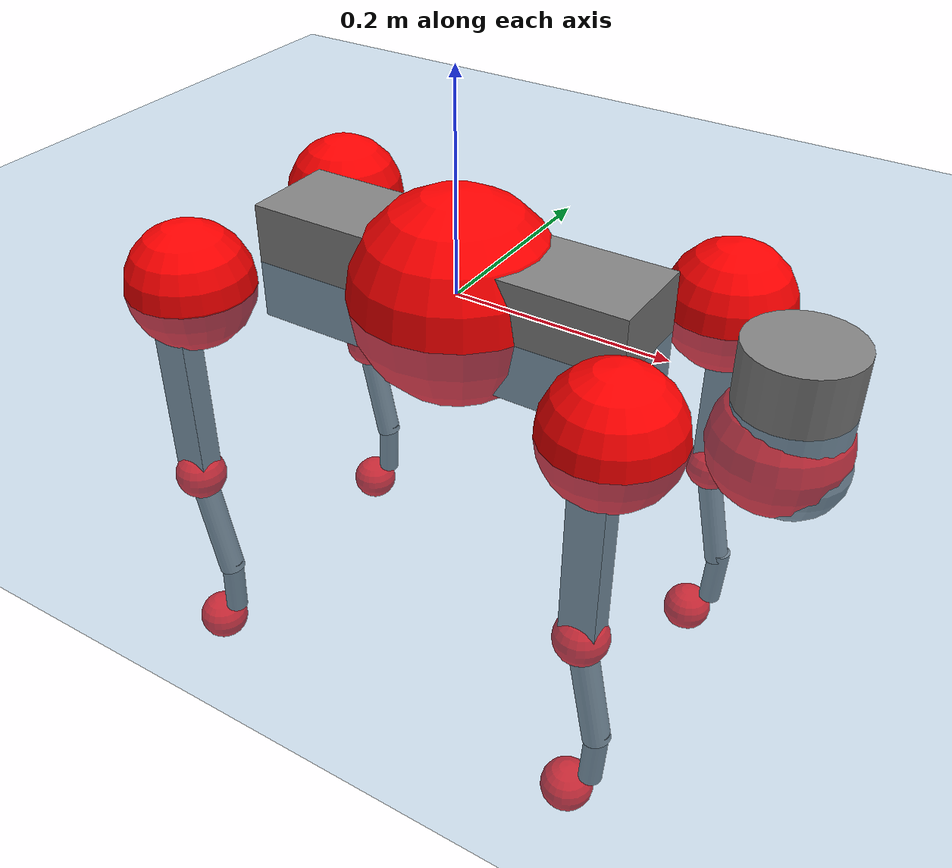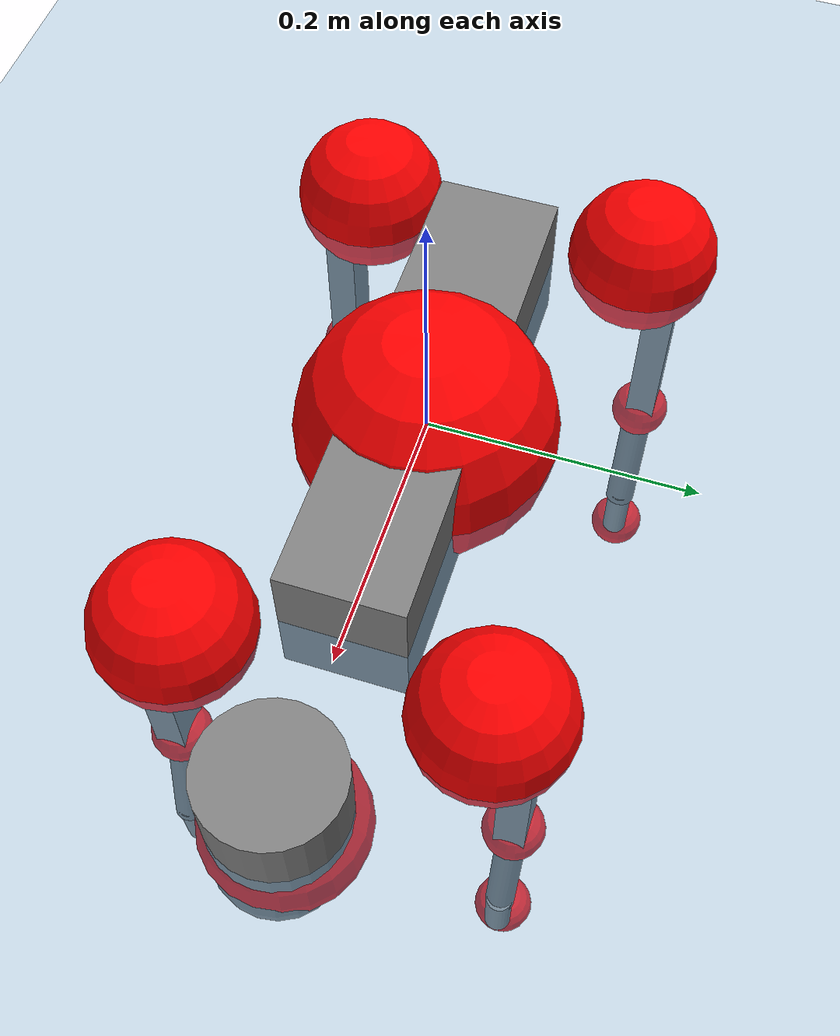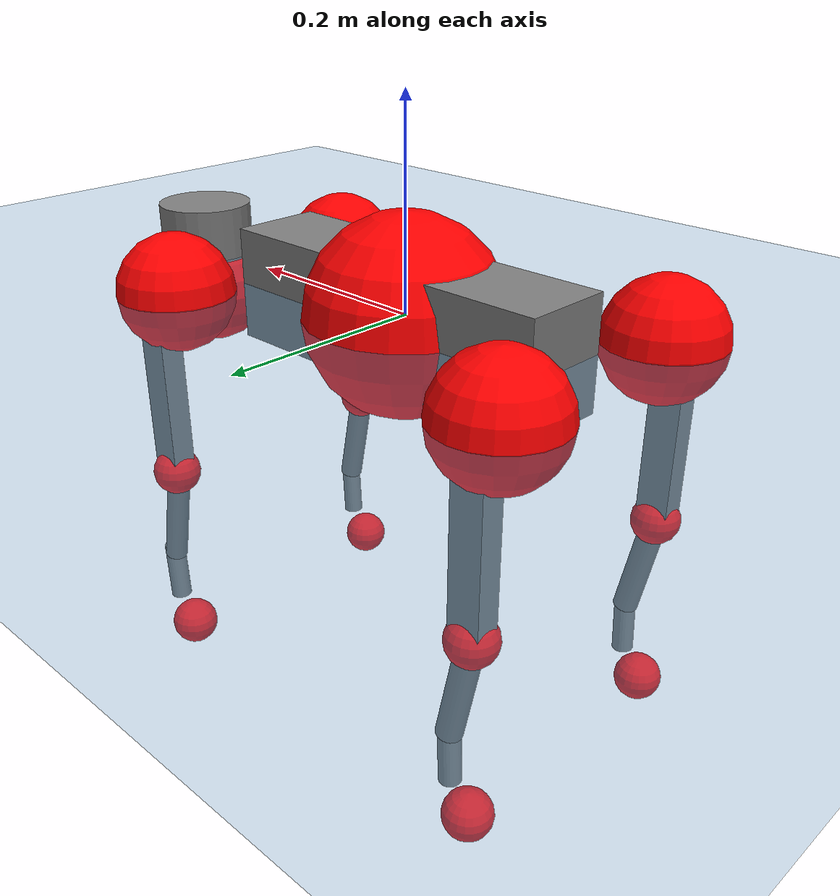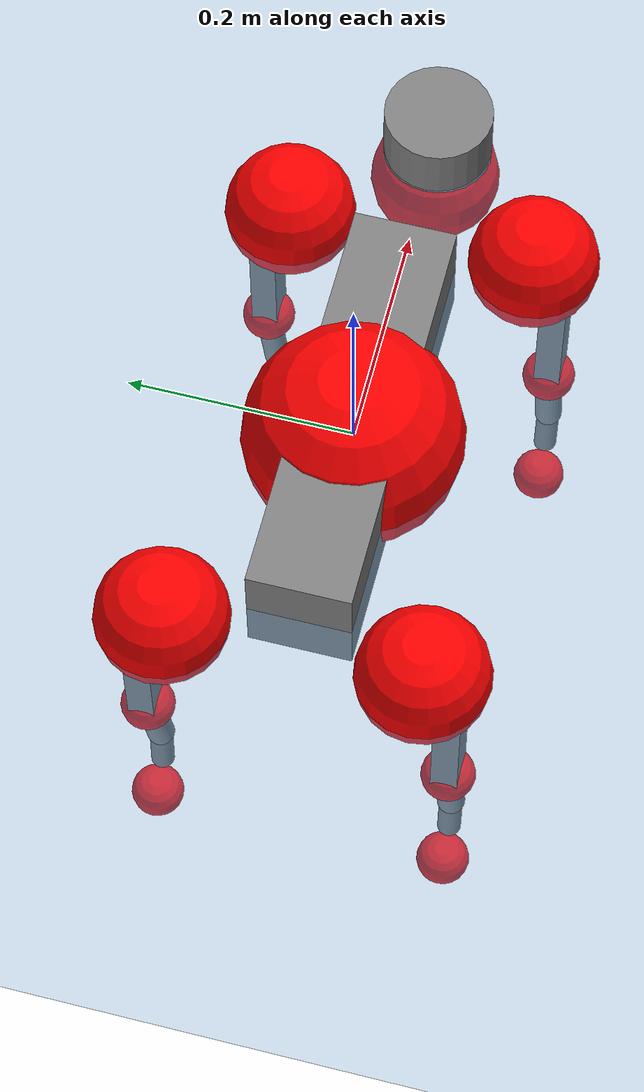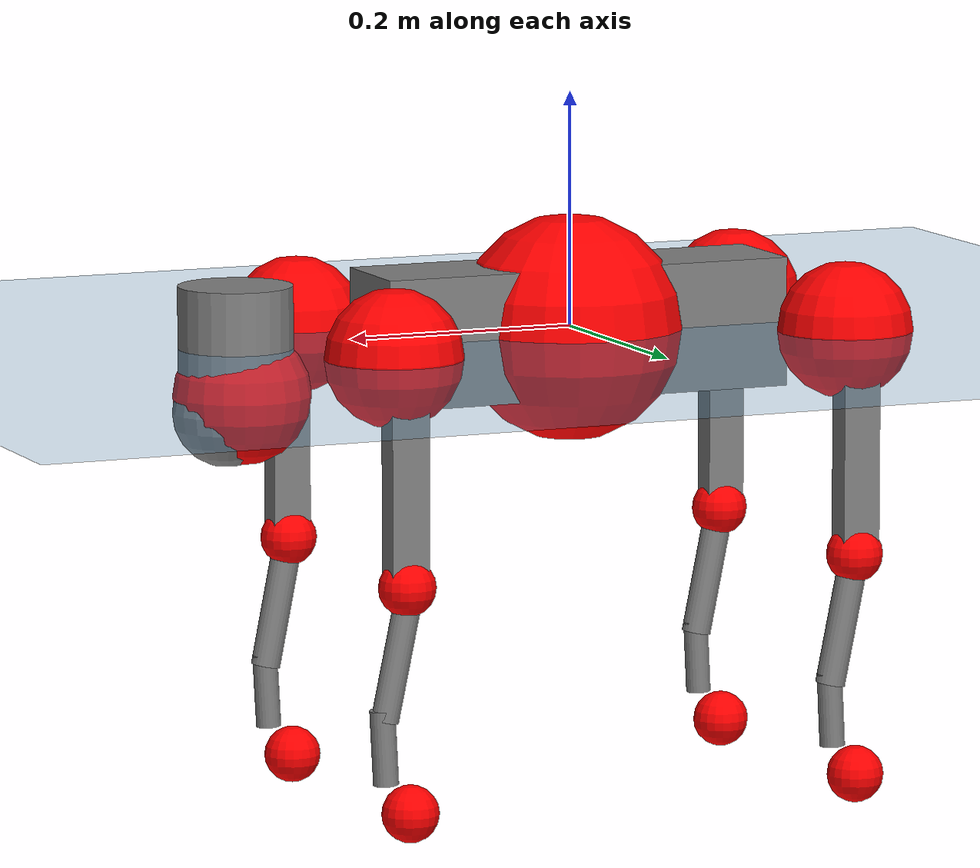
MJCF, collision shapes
<mujoco model="go2">
  <compiler angle="radian" assetdir="assets" balanceinertia="true" inertiafromgeom="false"/>

  <option timestep="0.005" density="1.2" viscosity="2e-05"/>

  <size nkey="1"/>

  <visual>
    <quality shadowsize="8192"/>
    <map shadowclip="0.5"/>
  </visual>

  <default>
    <default class="/">
      <geom contype="0" conaffinity="0" group="1" solref="-1000 -80"/>
      <site size="0.01 0.005 0.005" group="5"/>
      <general forcelimited="true" biastype="affine" gainprm="20" biasprm="0 -20 -0.5"/>
      <default class="go2">
        <joint armature="0.01" damping="0.01" frictionloss="0.2"/>
        <geom condim="1" margin="0.001"/>
        <default class="visual">
          <geom type="mesh" group="2"/>
        </default>
        <default class="collision">
          <geom group="3"/>
          <default class="foot">
            <geom size="0.022 0 0" condim="6" priority="1" friction="0.8 0.02 0.01" solimp="0.015 1 0.022"/>
          </default>
        </default>
        <default class="reward_collision_sphere">
          <geom group="5" rgba="1 0 0 1"/>
        </default>
      </default>
    </default>
  </default>

  <asset>
    <texture type="skybox" colorspace="auto" name="//unnamed_texture_0" builtin="gradient" rgb1="0.95 0.95 0.95" rgb2="0.95 0.95 0.95" width="100" height="600"/>
    <texture type="2d" colorspace="auto" name="texplane" builtin="checker" rgb1="0.345 0.575 0.748" rgb2="0.345 0.575 0.748" markrgb="1 1 1" width="512" height="512"/>
    <material name="MatPlane" class="/" texture="texplane" texuniform="true" texrepeat="2 2" specular="0.9"/>
    <material name="metal" class="/" rgba="0.9 0.95 0.95 1"/>
    <material name="black" class="/" rgba="0 0 0 1"/>
    <material name="white" class="/"/>
    <material name="gray" class="/" rgba="0.671705 0.692426 0.77427 1"/>
    <mesh name="base_0" class="/" file="base_0.obj"/>
    <mesh name="base_1" class="/" file="base_1.obj"/>
    <mesh name="base_2" class="/" file="base_2.obj"/>
    <mesh name="base_3" class="/" file="base_3.obj"/>
    <mesh name="base_4" class="/" file="base_4.obj"/>
    <mesh name="hip_0" class="/" file="hip_0.obj"/>
    <mesh name="hip_1" class="/" file="hip_1.obj"/>
    <mesh name="thigh_0" class="/" file="thigh_0.obj"/>
    <mesh name="thigh_1" class="/" file="thigh_1.obj"/>
    <mesh name="thigh_mirror_0" class="/" file="thigh_mirror_0.obj"/>
    <mesh name="thigh_mirror_1" class="/" file="thigh_mirror_1.obj"/>
    <mesh name="calf_0" class="/" file="calf_0.obj"/>
    <mesh name="calf_1" class="/" file="calf_1.obj"/>
    <mesh name="calf_mirror_0" class="/" file="calf_mirror_0.obj"/>
    <mesh name="calf_mirror_1" class="/" file="calf_mirror_1.obj"/>
    <mesh name="foot" class="/" file="foot.obj"/>
  </asset>

  <worldbody>
    <geom name="floor" class="/" size="100 100 0.125" type="plane" group="0" material="MatPlane"/>
    <light name="toplight_shadow" class="/" pos="0 0 5" dir="0.0990148 0.0990148 -0.990148" type="directional" ambient="0.04 0.04 0.04" diffuse="0.55 0.55 0.55" specular="0.12 0.12 0.12"/>
    <light name="toplight_fill" class="/" pos="0 0 5" dir="0.0990148 0.0990148 -0.990148" type="directional" castshadow="false" ambient="0.04 0.04 0.04" diffuse="0.3 0.3 0.3" specular="0.08 0.08 0.08"/>
    <body name="trunk" childclass="go2" pos="0.000224667 4.42805e-05 -0.000798711" quat="1 -7.25117e-05 0.000161757 -0.000102462">
      <inertial pos="0.0228588 8.26519e-05 -0.00496833" quat="-0.000875808 0.71345 -0.00301352 0.700699" mass="6.45588" diaginertia="0.14742 0.0769376 0.0142549"/>
      <joint name="//unnamed_joint_0" type="free" armature="0" damping="0" frictionloss="0"/>
      <geom name="//unnamed_geom_1" class="visual" material="black" mesh="base_0"/>
      <geom name="//unnamed_geom_2" class="visual" material="black" mesh="base_1"/>
      <geom name="//unnamed_geom_3" class="visual" material="black" mesh="base_2"/>
      <geom name="//unnamed_geom_4" class="visual" material="white" mesh="base_3"/>
      <geom name="//unnamed_geom_5" class="visual" material="gray" mesh="base_4"/>
      <geom name="trunk_1" class="collision" size="0.182545 0.0453693 0.0553166" type="box"/>
      <geom name="trunk_2" class="collision" size="0.0485233 0.043671" pos="0.303214 0 0.00896061" type="cylinder"/>
      <geom name="trunk_3" class="collision" size="0.0456119" pos="0.311725 0 -0.0537636"/>
      <geom name="//unnamed_geom_9" class="reward_collision_sphere" size="0.0970466"/>
      <geom name="//unnamed_geom_10" class="reward_collision_sphere" size="0.058228" pos="0.297894 0 -0.0403227"/>
      <site name="imu" pos="-0.0246921 -0.0045819 0.0402902" size="0.00970466"/>
      <camera name="track" pos="0 -1.90286 0" quat="0.707107 0.707107 0 0" mode="trackcom"/>
      <camera name="ego_camera" pos="0.331939 0 0.0403227" quat="-0.5 -0.5 0.5 0.5"/>
      <body name="FL_hip" pos="0.205312 0.0433807 0.000985558" quat="1 0.000178203 0.000184715 8.59362e-06">
        <inertial pos="-0.0056615 0.002149 -0.00139317" quat="0.499723 0.498218 0.503517 0.498524" mass="0.625957" diaginertia="0.00120891 0.000469007 0.000280183"/>
        <joint name="FL_hip_joint" pos="0 0 0" axis="0.999999 -0.00129451 0.000267322" stiffness="0.00108705" range="-1.04709 1.03182" armature="0.00971855" damping="0.00684854" frictionloss="0.18561"/>
        <geom name="//unnamed_geom_11" class="visual" material="metal" mesh="hip_0"/>
        <geom name="//unnamed_geom_12" class="visual" material="gray" mesh="hip_1"/>
        <geom name="//unnamed_geom_13" class="collision" size="0.0446414 0.0194093" pos="0 0.0761143 0" quat="0.707107 0.707107 0 0" type="cylinder"/>
        <geom name="//unnamed_geom_14" class="reward_collision_sphere" size="0.058228" pos="0 0.0666 0"/>
        <body name="FL_thigh" pos="-0.000457283 0.0898468 0.00184838" quat="1 -5.57476e-05 -0.000197687 0.000132436">
          <inertial pos="-0.00370389 -0.0210439 -0.0287988" quat="0.829535 0.0847781 -0.0200115 0.551619" mass="1.05888" diaginertia="0.00816197 0.00455647 0.00051"/>
          <joint name="FL_thigh_joint" pos="0 0 0" axis="0.00760356 0.999971 0.000758285" stiffness="0.00275677" range="-1.55194 3.48921" armature="0.00999789" damping="0.00382959" frictionloss="0.194489"/>
          <geom name="//unnamed_geom_15" class="visual" material="metal" mesh="thigh_0"/>
          <geom name="//unnamed_geom_16" class="visual" material="gray" mesh="thigh_1"/>
          <geom name="//unnamed_geom_17" class="collision" size="0.103355 0.0118882 0.0164979" pos="0 0 -0.0954304" quat="0.707107 0 0.707107 0" type="box"/>
          <body name="FL_calf" pos="-0.000960512 -3.8987e-05 -0.190574" quat="1 4.53532e-05 5.16595e-05 2.52465e-05">
            <inertial pos="0.00553157 -0.000911174 -0.126557" quat="0.710005 0.0026783 -0.00428303 0.704178" mass="0.221697" diaginertia="0.00202862 0.00114356 3.07448e-05"/>
            <joint name="FL_calf_joint" pos="0 0 0" axis="0.00182401 0.999998 -0.00115361" stiffness="0.00542976" range="-2.74908 -0.855817" armature="0.00948726" damping="0.00880025" frictionloss="0.203408"/>
            <geom name="//unnamed_geom_18" class="visual" material="gray" mesh="calf_0"/>
            <geom name="//unnamed_geom_19" class="visual" material="black" mesh="calf_1"/>
            <geom name="FL_calf0" class="collision" size="0.0116456 0.058228" pos="0.00851126 0 -0.0537636" quat="0.994493 0 -0.104807 0" type="cylinder"/>
            <geom name="//unnamed_geom_21" class="collision" size="0.0106751 0.0315401" pos="0.0212782 0 -0.132617" quat="0.999688 0 0.0249974 0" type="cylinder"/>
            <geom name="//unnamed_geom_22" class="visual" pos="0 0 -0.190861" quat="1 0 0 0" material="black" mesh="foot"/>
            <geom name="FL_foot" class="foot" size="0.0175674" pos="-0.00212782 0 -0.190861"/>
            <geom name="//unnamed_geom_24" class="reward_collision_sphere" size="0.0242616"/>
            <geom name="//unnamed_geom_25" class="reward_collision_sphere" size="0.0242616" pos="-0.00212782 0 -0.190861"/>
            <site name="FL_foot" class="foot" pos="-0.00212782 0 -0.190861" size="0.00970466"/>
          </body>
        </body>
      </body>
      <body name="FR_hip" pos="0.206212 -0.0438404 -0.000265201" quat="1 -0.000549887 0.000152828 1.35994e-05">
        <inertial pos="-0.00551604 -0.00155955 -0.000695136" quat="0.494694 0.507905 0.499367 0.497939" mass="0.626269" diaginertia="0.00121186 0.000464215 0.000278298"/>
        <joint name="FR_hip_joint" pos="0 0 0" axis="0.999998 0.000997654 0.00189187" range="-1.06332 1.0678" armature="0.00985828" damping="0.0142519" frictionloss="0.185744"/>
        <geom name="//unnamed_geom_26" class="visual" pos="0 4.82347e-10 2.06889e-08" quat="4.63268e-05 1 0 0" material="metal" mesh="hip_0"/>
        <geom name="//unnamed_geom_27" class="visual" pos="0 7.81943e-10 -5.11715e-08" quat="4.63268e-05 1 0 0" material="gray" mesh="hip_1"/>
        <geom name="//unnamed_geom_28" class="collision" size="0.0446414 0.0194093" pos="0 -0.0761143 0" quat="0.707107 0.707107 0 0" type="cylinder"/>
        <geom name="//unnamed_geom_29" class="reward_collision_sphere" size="0.058228" pos="0 -0.0666 0"/>
        <body name="FR_thigh" pos="0.000122301 -0.0899498 0.00186187" quat="1 0.000326873 -5.89106e-06 -0.000124103">
          <inertial pos="-0.00399317 0.0211443 -0.0287934" quat="0.551128 -0.019281 0.084697 0.829887" mass="1.0445" diaginertia="0.00807453 0.0045671 0.000502842"/>
          <joint name="FR_thigh_joint" pos="0 0 0" axis="-0.0056657 -0.999984 0.000856466" range="-3.4918 1.58802" armature="0.0100364" damping="0.00743877" frictionloss="0.198482"/>
          <geom name="//unnamed_geom_30" class="visual" material="metal" mesh="thigh_mirror_0"/>
          <geom name="//unnamed_geom_31" class="visual" material="gray" mesh="thigh_mirror_1"/>
          <geom name="//unnamed_geom_32" class="collision" size="0.103355 0.0118882 0.0164979" pos="0 0 -0.0954304" quat="0.707107 0 0.707107 0" type="box"/>
          <body name="FR_calf" pos="-0.000649303 0.00035188 -0.190926" quat="1 0.000215693 0.000123887 4.01838e-05">
            <inertial pos="0.00618502 0.000469016 -0.127189" quat="0.706348 -0.00610077 -0.00150364 0.707837" mass="0.218507" diaginertia="0.00203049 0.00113683 3.09115e-05"/>
            <joint name="FR_calf_joint" pos="0 0 0" axis="-0.00224644 -0.999997 -0.000761787" range="0.835673 2.72454" armature="0.00968336" damping="0.00589538" frictionloss="0.202087"/>
            <geom name="//unnamed_geom_33" class="visual" material="gray" mesh="calf_mirror_0"/>
            <geom name="//unnamed_geom_34" class="visual" material="black" mesh="calf_mirror_1"/>
            <geom name="FR_calf0" class="collision" size="0.0126161 0.058228" pos="0.0106391 0 -0.0537636" quat="0.995004 0 -0.0998334 0" type="cylinder"/>
            <geom name="//unnamed_geom_36" class="collision" size="0.0106751 0.0315401" pos="0.0212782 0 -0.132617" quat="0.999688 0 0.0249974 0" type="cylinder"/>
            <geom name="//unnamed_geom_37" class="visual" pos="0 0 -0.190861" quat="1 0 0 0" material="black" mesh="foot"/>
            <geom name="FR_foot" class="foot" size="0.0213113" pos="-0.00212782 0 -0.190861"/>
            <geom name="//unnamed_geom_39" class="reward_collision_sphere" size="0.0242616"/>
            <geom name="//unnamed_geom_40" class="reward_collision_sphere" size="0.0242616" pos="-0.00212782 0 -0.190861"/>
            <site name="FR_foot" class="foot" pos="-0.00212782 0 -0.190861" size="0.00970466"/>
          </body>
        </body>
      </body>
      <body name="RL_hip" pos="-0.206181 0.0449024 0.000738504" quat="1 -7.93092e-05 -1.529e-05 3.58208e-05">
        <inertial pos="0.0056098 0.00222146 -0.000777232" quat="0.506738 0.497463 0.495627 0.5001" mass="0.626271" diaginertia="0.00123088 0.000467147 0.00028226"/>
        <joint name="RL_hip_joint" pos="0 0 0" axis="-0.999798 -0.0199624 -0.00244762" stiffness="0.0035547" range="-1.04898 1.05177" armature="0.0096321" damping="0.0121901" frictionloss="0.195552"/>
        <geom name="//unnamed_geom_41" class="visual" pos="-1.46222e-09 0 -2.86628e-07" quat="4.63268e-05 0 1 0" material="metal" mesh="hip_0"/>
        <geom name="//unnamed_geom_42" class="visual" pos="-2.37043e-09 0 -2.54198e-07" quat="4.63268e-05 0 1 0" material="gray" mesh="hip_1"/>
        <geom name="//unnamed_geom_43" class="collision" size="0.0446414 0.0194093" pos="0 0.0761143 0" quat="0.707107 0.707107 0 0" type="cylinder"/>
        <geom name="//unnamed_geom_44" class="reward_collision_sphere" size="0.058228" pos="0 0.0666 0"/>
        <body name="RL_thigh" pos="0.0003721 0.090001 0.000892885" quat="1 -0.000159068 0.000277234 5.00883e-06">
          <inertial pos="-0.00280948 -0.0203397 -0.0302699" quat="0.82952 0.0847842 -0.0201326 0.551637" mass="1.07321" diaginertia="0.00827854 0.00464483 0.000510424"/>
          <joint name="RL_thigh_joint" pos="0 0 0" axis="-0.00535245 0.999961 0.00696844" range="-0.506099 4.53505" armature="0.00962733" damping="0.00106833" frictionloss="0.187236"/>
          <geom name="//unnamed_geom_45" class="visual" material="metal" mesh="thigh_0"/>
          <geom name="//unnamed_geom_46" class="visual" material="gray" mesh="thigh_1"/>
          <geom name="//unnamed_geom_47" class="collision" size="0.103355 0.0118882 0.0164979" pos="0 0 -0.0954304" quat="0.707107 0 0.707107 0" type="box"/>
          <body name="RL_calf" pos="0.000238705 -0.00115093 -0.190423" quat="1 -3.28972e-05 -0.000337505 4.1495e-05">
            <inertial pos="0.00596537 -0.0010915 -0.127777" quat="0.710619 0.000940942 -0.0035105 0.703567" mass="0.221721" diaginertia="0.00204947 0.00116363 3.07408e-05"/>
            <joint name="RL_calf_joint" pos="0 0 0" axis="0.00750549 0.999948 0.00688729" range="-2.71447 -0.861321" armature="0.00978392" damping="0" frictionloss="0.195353"/>
            <geom name="//unnamed_geom_48" class="visual" material="gray" mesh="calf_0"/>
            <geom name="//unnamed_geom_49" class="visual" material="black" mesh="calf_1"/>
            <geom name="RL_calf0" class="collision" size="0.0126161 0.058228" pos="0.0106391 0 -0.0537636" quat="0.995004 0 -0.0998334 0" type="cylinder"/>
            <geom name="//unnamed_geom_51" class="collision" size="0.0106751 0.0315401" pos="0.0212782 0 -0.132617" quat="0.999688 0 0.0249974 0" type="cylinder"/>
            <geom name="//unnamed_geom_52" class="visual" pos="0 0 -0.190861" quat="1 0 0 0" material="black" mesh="foot"/>
            <geom name="RL_foot" class="foot" size="0.0189036" pos="-0.00212782 0 -0.190861"/>
            <geom name="//unnamed_geom_54" class="reward_collision_sphere" size="0.0242616"/>
            <geom name="//unnamed_geom_55" class="reward_collision_sphere" size="0.0242616" pos="-0.00212782 0 -0.190861"/>
            <site name="RL_foot" class="foot" pos="-0.00212782 0 -0.190861" size="0.00970466"/>
          </body>
        </body>
      </body>
      <body name="RR_hip" pos="-0.204956 -0.0452204 0.000993425" quat="1 -0.000131734 -6.63953e-05 8.81475e-06">
        <inertial pos="0.00614148 -0.000990156 -5.72506e-05" quat="0.499195 0.496118 0.497951 0.506672" mass="0.616247" diaginertia="0.00122508 0.000469436 0.00027696"/>
        <joint name="RR_hip_joint" pos="0 0 0" axis="-0.999984 -0.0041765 -0.00387473" range="-1.03344 1.04676" armature="0.0097192" damping="0.00127144" frictionloss="0.204779"/>
        <geom name="//unnamed_geom_56" class="visual" pos="1.45832e-09 4.82348e-10 -3.07317e-07" quat="2.14617e-09 4.63268e-05 4.63268e-05 -1" material="metal" mesh="hip_0"/>
        <geom name="//unnamed_geom_57" class="visual" pos="2.38006e-09 7.81943e-10 -2.03027e-07" quat="2.14617e-09 4.63268e-05 4.63268e-05 -1" material="gray" mesh="hip_1"/>
        <geom name="//unnamed_geom_58" class="collision" size="0.0446414 0.0194093" pos="0 -0.0761143 0" quat="0.707107 0.707107 0 0" type="cylinder"/>
        <geom name="//unnamed_geom_59" class="reward_collision_sphere" size="0.058228" pos="0 -0.0666 0"/>
        <body name="RR_thigh" pos="-0.000354208 -0.0917347 -0.0014198" quat="1 -4.54741e-05 -0.000285463 0.000378569">
          <inertial pos="-0.00360989 0.0219474 -0.030639" quat="0.549585 -0.0184563 0.0819021 0.831209" mass="1.03921" diaginertia="0.00809979 0.00454048 0.000510165"/>
          <joint name="RR_thigh_joint" pos="0 0 0" axis="-0.000503529 -1 -0.000365552" range="-4.54012 0.535533" armature="0.00979478" damping="0.0216798" frictionloss="0.191269"/>
          <geom name="//unnamed_geom_60" class="visual" material="metal" mesh="thigh_mirror_0"/>
          <geom name="//unnamed_geom_61" class="visual" material="gray" mesh="thigh_mirror_1"/>
          <geom name="//unnamed_geom_62" class="collision" size="0.103355 0.0118882 0.0164979" pos="0 0 -0.0954304" quat="0.707107 0 0.707107 0" type="box"/>
          <body name="RR_calf" pos="0.000725398 -0.000629829 -0.191993" quat="1 0.000261712 -2.45748e-05 0.000426619">
            <inertial pos="0.00660505 0.000850204 -0.127047" quat="0.704193 -0.00529577 0.000740164 0.709988" mass="0.216715" diaginertia="0.00199684 0.00111566 3.01841e-05"/>
            <joint name="RR_calf_joint" pos="0 0 0" axis="0.0077397 -0.999966 -0.00279548" range="0.83871 2.71867" armature="0.00978127" damping="0.00713136" frictionloss="0.191966"/>
            <geom name="//unnamed_geom_63" class="visual" material="gray" mesh="calf_mirror_0"/>
            <geom name="//unnamed_geom_64" class="visual" material="black" mesh="calf_mirror_1"/>
            <geom name="RR_calf0" class="collision" size="0.0126161 0.058228" pos="0.0106391 0 -0.0537636" quat="0.995004 0 -0.0998334 0" type="cylinder"/>
            <geom name="//unnamed_geom_66" class="collision" size="0.0106751 0.0315401" pos="0.0212782 0 -0.132617" quat="0.999688 0 0.0249974 0" type="cylinder"/>
            <geom name="//unnamed_geom_67" class="visual" pos="0 0 -0.190861" quat="1 0 0 0" material="black" mesh="foot"/>
            <geom name="RR_foot" class="foot" size="0.0224289" pos="-0.00212782 0 -0.190861"/>
            <geom name="//unnamed_geom_69" class="reward_collision_sphere" size="0.0242616"/>
            <geom name="//unnamed_geom_70" class="reward_collision_sphere" size="0.0242616" pos="-0.00212782 0 -0.190861"/>
            <site name="RR_foot" class="foot" pos="-0.00212782 0 -0.190861" size="0.00970466"/>
          </body>
        </body>
      </body>
    </body>
  </worldbody>

  <contact>
    <pair class="/" geom1="floor" geom2="FL_foot" name="//unnamed_contact_0"/>
    <pair class="/" geom1="floor" geom2="FR_foot" name="//unnamed_contact_1"/>
    <pair class="/" geom1="floor" geom2="RL_foot" name="//unnamed_contact_2"/>
    <pair class="/" geom1="floor" geom2="RR_foot" name="//unnamed_contact_3"/>
  </contact>

  <actuator>
    <general name="FL_hip" class="/" joint="FL_hip_joint" forcerange="-23.0188 23.0188" gainprm="19.735" biasprm="0 -19.735 -0.486141"/>
    <general name="FL_thigh" class="/" joint="FL_thigh_joint" forcerange="-23.4017 23.4017" gainprm="19.735" biasprm="0 -19.735 -0.486141"/>
    <general name="FL_calf" class="/" joint="FL_calf_joint" forcerange="-42.3931 42.3931" gainprm="19.735" biasprm="0 -19.735 -0.486141"/>
    <general name="FR_hip" class="/" joint="FR_hip_joint" forcerange="-22.534 22.534" gainprm="19.735" biasprm="0 -19.735 -0.486141"/>
    <general name="FR_thigh" class="/" joint="FR_thigh_joint" forcerange="-22.1546 22.1546" gainprm="19.735" biasprm="0 -19.735 -0.486141"/>
    <general name="FR_calf" class="/" joint="FR_calf_joint" forcerange="-43.5462 43.5462" gainprm="19.735" biasprm="0 -19.735 -0.486141"/>
    <general name="RL_hip" class="/" joint="RL_hip_joint" forcerange="-22.8734 22.8734" gainprm="19.735" biasprm="0 -19.735 -0.486141"/>
    <general name="RL_thigh" class="/" joint="RL_thigh_joint" forcerange="-22.4275 22.4275" gainprm="19.735" biasprm="0 -19.735 -0.486141"/>
    <general name="RL_calf" class="/" joint="RL_calf_joint" forcerange="-44.3004 44.3004" gainprm="19.735" biasprm="0 -19.735 -0.486141"/>
    <general name="RR_hip" class="/" joint="RR_hip_joint" forcerange="-22.9319 22.9319" gainprm="19.735" biasprm="0 -19.735 -0.486141"/>
    <general name="RR_thigh" class="/" joint="RR_thigh_joint" forcerange="-23.2083 23.2083" gainprm="19.735" biasprm="0 -19.735 -0.486141"/>
    <general name="RR_calf" class="/" joint="RR_calf_joint" forcerange="-42.7567 42.7567" gainprm="19.735" biasprm="0 -19.735 -0.486141"/>
  </actuator>

  <sensor>
    <gyro site="imu" name="imu_angular_velocity"/>
    <velocimeter site="imu" name="imu_linear_velocity"/>
    <framelinvel objtype="site" objname="FL_foot" name="FL_foot_global_linear_velocity"/>
    <framelinvel objtype="site" objname="FR_foot" name="FR_foot_global_linear_velocity"/>
    <framelinvel objtype="site" objname="RL_foot" name="RL_foot_global_linear_velocity"/>
    <framelinvel objtype="site" objname="RR_foot" name="RR_foot_global_linear_velocity"/>
  </sensor>

  <keyframe>
    <key name="home" qpos="0 0 0.325 1 0 0 0 0.1 0.8 -1.5 -0.1 -0.8 1.5 -0.1 0.8 -1.5 0.1 -0.8 1.5"/>
  </keyframe>
</mujoco>
